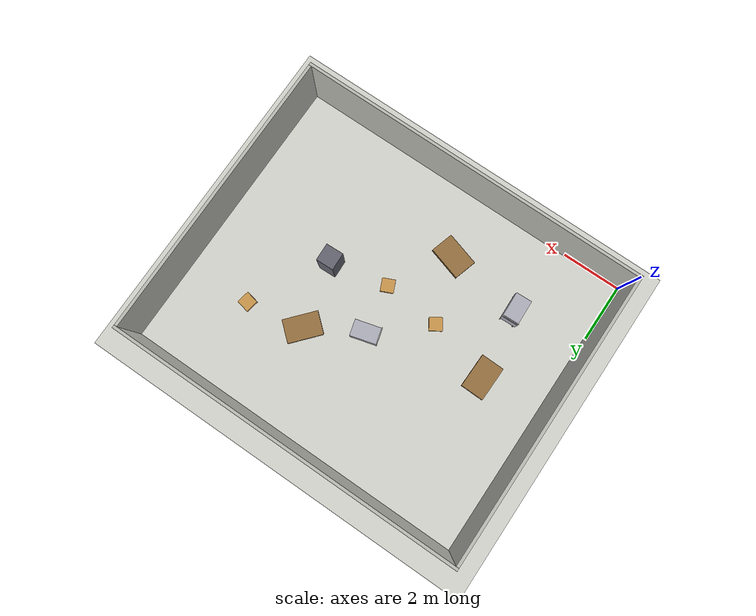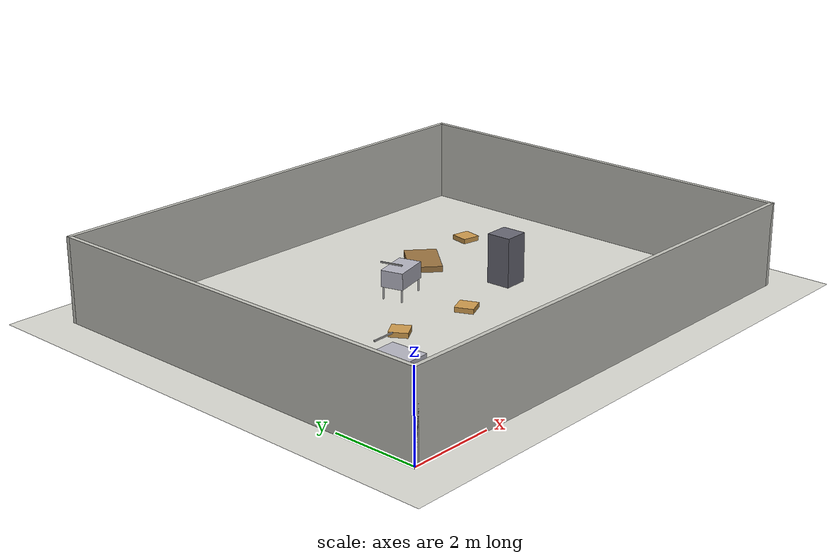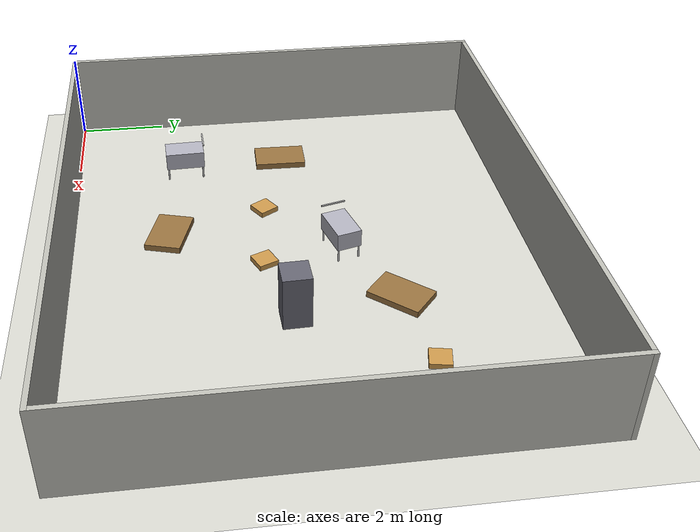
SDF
<?xml version="1.0"?>
<!-- GENERATED by cc_gazebo/scripts/generate_worlds.py from sim/ccsim/world.py (seed 1000). Do not edit. -->
<sdf version="1.9">
  <world name="cluttered_room">
    <physics name="1ms" type="ignore">
      <max_step_size>0.001</max_step_size>
      <real_time_factor>1.0</real_time_factor>
    </physics>
    <plugin filename="gz-sim-physics-system" name="gz::sim::systems::Physics"/>
    <plugin filename="gz-sim-user-commands-system" name="gz::sim::systems::UserCommands"/>
    <plugin filename="gz-sim-scene-broadcaster-system" name="gz::sim::systems::SceneBroadcaster"/>
    <plugin filename="gz-sim-sensors-system" name="gz::sim::systems::Sensors">
      <render_engine>ogre2</render_engine>
    </plugin>
    <plugin filename="gz-sim-imu-system" name="gz::sim::systems::Imu"/>
    <plugin filename="gz-sim-contact-system" name="gz::sim::systems::Contact"/>
    <scene><ambient>0.6 0.6 0.6 1</ambient><background>0.8 0.85 0.9 1</background><shadows>false</shadows></scene>
    <gui fullscreen="0">
      <plugin filename="MinimalScene" name="3D View">
        <gz-gui><title>3D View</title><property type="bool" key="showTitleBar">false</property>
          <property type="string" key="state">docked</property></gz-gui>
        <engine>ogre2</engine>
        <scene>scene</scene>
        <ambient_light>0.4 0.4 0.4</ambient_light>
        <background_color>0.8 0.85 0.9</background_color>
        <camera_pose>-1.73 -1.19 3.0 0 0.6 0.675</camera_pose>
        <camera_clip><near>0.1</near><far>500</far></camera_clip>
      </plugin>
      <plugin filename="GzSceneManager" name="Scene Manager"><gz-gui><property key="resizable" type="bool">false</property><property key="width" type="double">5</property><property key="height" type="double">5</property><property key="state" type="string">floating</property><property key="showTitleBar" type="bool">false</property></gz-gui></plugin>
      <plugin filename="InteractiveViewControl" name="Interactive view control"><gz-gui><property key="resizable" type="bool">false</property><property key="width" type="double">5</property><property key="height" type="double">5</property><property key="state" type="string">floating</property><property key="showTitleBar" type="bool">false</property></gz-gui></plugin>
      <plugin filename="CameraTracking" name="Camera Tracking"><gz-gui><property key="resizable" type="bool">false</property><property key="width" type="double">5</property><property key="height" type="double">5</property><property key="state" type="string">floating</property><property key="showTitleBar" type="bool">false</property></gz-gui></plugin>
      <plugin filename="MarkerManager" name="Marker manager"><gz-gui><property key="resizable" type="bool">false</property><property key="width" type="double">5</property><property key="height" type="double">5</property><property key="state" type="string">floating</property><property key="showTitleBar" type="bool">false</property></gz-gui></plugin>
      <plugin filename="SelectEntities" name="Select Entities"><gz-gui><property key="resizable" type="bool">false</property><property key="width" type="double">5</property><property key="height" type="double">5</property><property key="state" type="string">floating</property><property key="showTitleBar" type="bool">false</property></gz-gui></plugin>
      <plugin filename="Spawn" name="Spawn Entities"><gz-gui><property key="resizable" type="bool">false</property><property key="width" type="double">5</property><property key="height" type="double">5</property><property key="state" type="string">floating</property><property key="showTitleBar" type="bool">false</property></gz-gui></plugin>
      <plugin filename="VisualizationCapabilities" name="Visualization Capabilities"><gz-gui><property key="resizable" type="bool">false</property><property key="width" type="double">5</property><property key="height" type="double">5</property><property key="state" type="string">floating</property><property key="showTitleBar" type="bool">false</property></gz-gui></plugin>
      <plugin filename="WorldControl" name="World control">
        <gz-gui><title>World control</title><property type="bool" key="showTitleBar">false</property>
          <property type="bool" key="resizable">false</property><property type="double" key="height">72</property>
          <property type="double" key="z">1</property><property type="string" key="state">floating</property>
          <anchors target="3D View"><line own="left" target="left"/><line own="bottom" target="bottom"/></anchors></gz-gui>
        <play_pause>true</play_pause><step>true</step><start_paused>false</start_paused><use_event>true</use_event>
      </plugin>
      <plugin filename="WorldStats" name="World stats">
        <gz-gui><title>World stats</title><property type="bool" key="showTitleBar">false</property>
          <property type="bool" key="resizable">false</property><property type="double" key="height">110</property>
          <property type="double" key="width">290</property><property type="double" key="z">1</property>
          <property type="string" key="state">floating</property>
          <anchors target="3D View"><line own="right" target="right"/><line own="bottom" target="bottom"/></anchors></gz-gui>
        <sim_time>true</sim_time><real_time>true</real_time><real_time_factor>true</real_time_factor><iterations>true</iterations>
      </plugin>
      <plugin filename="EntityTree" name="Entity tree"></plugin>
      <plugin filename="ComponentInspector" name="Component inspector"></plugin>
    </gui>
    <light type="directional" name="sun">
      <cast_shadows>false</cast_shadows>
      <pose>0 0 10 0 0 0</pose>
      <diffuse>0.9 0.9 0.9 1</diffuse>
      <direction>-0.4 0.2 -0.9</direction>
    </light>
    <model name="ground_plane">
      <static>true</static>
      <link name="link">
        <collision name="collision">
          <geometry><plane><normal>0 0 1</normal><size>200 200</size></plane></geometry>
          <!-- polished floor -->
          <surface><friction><ode><mu>0.6</mu><mu2>0.6</mu2></ode></friction></surface>
        </collision>
        <visual name="visual">
          <geometry><plane><normal>0 0 1</normal><size>200 200</size></plane></geometry>
          <material><ambient>0.85 0.85 0.82 1</ambient><diffuse>0.85 0.85 0.82 1</diffuse></material>
        </visual>
      </link>
    </model>
    <model name="wall_0">
      <static>true</static>
      <pose>6.0000 0.0000 1.0000 0 0 0.0000</pose>
      <link name="link">
        <collision name="collision"><geometry><box><size>12.1000 0.1000 2.0000</size></box></geometry></collision>
        <visual name="visual">
          <geometry><box><size>12.1000 0.1000 2.0000</size></box></geometry>
          <material><ambient>0.75 0.75 0.72 1</ambient><diffuse>0.75 0.75 0.72 1</diffuse></material>
        </visual>
      </link>
    </model>
    <model name="wall_1">
      <static>true</static>
      <pose>12.0000 5.0000 1.0000 0 0 1.5708</pose>
      <link name="link">
        <collision name="collision"><geometry><box><size>10.1000 0.1000 2.0000</size></box></geometry></collision>
        <visual name="visual">
          <geometry><box><size>10.1000 0.1000 2.0000</size></box></geometry>
          <material><ambient>0.75 0.75 0.72 1</ambient><diffuse>0.75 0.75 0.72 1</diffuse></material>
        </visual>
      </link>
    </model>
    <model name="wall_2">
      <static>true</static>
      <pose>6.0000 10.0000 1.0000 0 0 3.1416</pose>
      <link name="link">
        <collision name="collision"><geometry><box><size>12.1000 0.1000 2.0000</size></box></geometry></collision>
        <visual name="visual">
          <geometry><box><size>12.1000 0.1000 2.0000</size></box></geometry>
          <material><ambient>0.75 0.75 0.72 1</ambient><diffuse>0.75 0.75 0.72 1</diffuse></material>
        </visual>
      </link>
    </model>
    <model name="wall_3">
      <static>true</static>
      <pose>0.0000 5.0000 1.0000 0 0 -1.5708</pose>
      <link name="link">
        <collision name="collision"><geometry><box><size>10.1000 0.1000 2.0000</size></box></geometry></collision>
        <visual name="visual">
          <geometry><box><size>10.1000 0.1000 2.0000</size></box></geometry>
          <material><ambient>0.75 0.75 0.72 1</ambient><diffuse>0.75 0.75 0.72 1</diffuse></material>
        </visual>
      </link>
    </model>
    <model name="pallet_0">
      <static>true</static>
      <pose>5.0108 2.1417 0.0700 0 0 2.8517</pose>
      <link name="link">
        <collision name="collision"><geometry><box><size>1.2000 0.8000 0.1400</size></box></geometry></collision>
        <visual name="visual">
          <geometry><box><size>1.2000 0.8000 0.1400</size></box></geometry>
          <material><ambient>0.6 0.45 0.25 1</ambient><diffuse>0.6 0.45 0.25 1</diffuse></material>
        </visual>
      </link>
    </model>
    <model name="pallet_1">
      <static>true</static>
      <pose>7.7470 6.8275 0.0700 0 0 -2.2891</pose>
      <link name="link">
        <collision name="collision"><geometry><box><size>1.2000 0.8000 0.1400</size></box></geometry></collision>
        <visual name="visual">
          <geometry><box><size>1.2000 0.8000 0.1400</size></box></geometry>
          <material><ambient>0.6 0.45 0.25 1</ambient><diffuse>0.6 0.45 0.25 1</diffuse></material>
        </visual>
      </link>
    </model>
    <model name="pallet_2">
      <static>true</static>
      <pose>2.0799 4.9201 0.0700 0 0 1.5500</pose>
      <link name="link">
        <collision name="collision"><geometry><box><size>1.2000 0.8000 0.1400</size></box></geometry></collision>
        <visual name="visual">
          <geometry><box><size>1.2000 0.8000 0.1400</size></box></geometry>
          <material><ambient>0.6 0.45 0.25 1</ambient><diffuse>0.6 0.45 0.25 1</diffuse></material>
        </visual>
      </link>
    </model>
    <model name="low_box_3">
      <static>true</static>
      <pose>6.2460 4.1528 0.0600 0 0 1.9839</pose>
      <link name="link">
        <collision name="collision"><geometry><box><size>0.4500 0.4500 0.1200</size></box></geometry></collision>
        <visual name="visual">
          <geometry><box><size>0.4500 0.4500 0.1200</size></box></geometry>
          <material><ambient>0.8 0.6 0.3 1</ambient><diffuse>0.8 0.6 0.3 1</diffuse></material>
        </visual>
      </link>
    </model>
    <model name="low_box_4">
      <static>true</static>
      <pose>9.7125 7.1640 0.0600 0 0 2.9499</pose>
      <link name="link">
        <collision name="collision"><geometry><box><size>0.4500 0.4500 0.1200</size></box></geometry></collision>
        <visual name="visual">
          <geometry><box><size>0.4500 0.4500 0.1200</size></box></geometry>
          <material><ambient>0.8 0.6 0.3 1</ambient><diffuse>0.8 0.6 0.3 1</diffuse></material>
        </visual>
      </link>
    </model>
    <model name="low_box_5">
      <static>true</static>
      <pose>4.2547 4.3278 0.0600 0 0 2.1326</pose>
      <link name="link">
        <collision name="collision"><geometry><box><size>0.4500 0.4500 0.1200</size></box></geometry></collision>
        <visual name="visual">
          <geometry><box><size>0.4500 0.4500 0.1200</size></box></geometry>
          <material><ambient>0.8 0.6 0.3 1</ambient><diffuse>0.8 0.6 0.3 1</diffuse></material>
        </visual>
      </link>
    </model>
    <model name="cart_6">
      <static>true</static>
      <pose>2.4063 2.5802 0 0 0 -1.5353</pose>
      <link name="link">
        <collision name="leg0"><pose>0.410 0.235 0.15 0 0 0</pose><geometry><cylinder><radius>0.02</radius><length>0.30</length></cylinder></geometry></collision>
        <visual name="leg0_v"><pose>0.410 0.235 0.15 0 0 0</pose><geometry><cylinder><radius>0.02</radius><length>0.30</length></cylinder></geometry></visual>
        <collision name="leg1"><pose>-0.410 0.235 0.15 0 0 0</pose><geometry><cylinder><radius>0.02</radius><length>0.30</length></cylinder></geometry></collision>
        <visual name="leg1_v"><pose>-0.410 0.235 0.15 0 0 0</pose><geometry><cylinder><radius>0.02</radius><length>0.30</length></cylinder></geometry></visual>
        <collision name="leg2"><pose>-0.410 -0.235 0.15 0 0 0</pose><geometry><cylinder><radius>0.02</radius><length>0.30</length></cylinder></geometry></collision>
        <visual name="leg2_v"><pose>-0.410 -0.235 0.15 0 0 0</pose><geometry><cylinder><radius>0.02</radius><length>0.30</length></cylinder></geometry></visual>
        <collision name="leg3"><pose>0.410 -0.235 0.15 0 0 0</pose><geometry><cylinder><radius>0.02</radius><length>0.30</length></cylinder></geometry></collision>
        <visual name="leg3_v"><pose>0.410 -0.235 0.15 0 0 0</pose><geometry><cylinder><radius>0.02</radius><length>0.30</length></cylinder></geometry></visual>
        <collision name="body"><pose>0 0 0.5 0 0 0</pose><geometry><box><size>0.900 0.550 0.4</size></box></geometry></collision>
        <visual name="body_v"><pose>0 0 0.5 0 0 0</pose><geometry><box><size>0.900 0.550 0.4</size></box></geometry>
          <material><ambient>0.7 0.7 0.75 1</ambient><diffuse>0.7 0.7 0.75 1</diffuse></material></visual>
        <collision name="handle"><pose>-0.450 0 0.9 0 0 0</pose><geometry><box><size>0.03 0.550 0.03</size></box></geometry></collision>
        <visual name="handle_v"><pose>-0.450 0 0.9 0 0 0</pose><geometry><box><size>0.03 0.550 0.03</size></box></geometry></visual>
      </link>
    </model>
    <model name="cart_7">
      <static>true</static>
      <pose>5.9355 5.8565 0 0 0 0.2633</pose>
      <link name="link">
        <collision name="leg0"><pose>0.410 0.235 0.15 0 0 0</pose><geometry><cylinder><radius>0.02</radius><length>0.30</length></cylinder></geometry></collision>
        <visual name="leg0_v"><pose>0.410 0.235 0.15 0 0 0</pose><geometry><cylinder><radius>0.02</radius><length>0.30</length></cylinder></geometry></visual>
        <collision name="leg1"><pose>-0.410 0.235 0.15 0 0 0</pose><geometry><cylinder><radius>0.02</radius><length>0.30</length></cylinder></geometry></collision>
        <visual name="leg1_v"><pose>-0.410 0.235 0.15 0 0 0</pose><geometry><cylinder><radius>0.02</radius><length>0.30</length></cylinder></geometry></visual>
        <collision name="leg2"><pose>-0.410 -0.235 0.15 0 0 0</pose><geometry><cylinder><radius>0.02</radius><length>0.30</length></cylinder></geometry></collision>
        <visual name="leg2_v"><pose>-0.410 -0.235 0.15 0 0 0</pose><geometry><cylinder><radius>0.02</radius><length>0.30</length></cylinder></geometry></visual>
        <collision name="leg3"><pose>0.410 -0.235 0.15 0 0 0</pose><geometry><cylinder><radius>0.02</radius><length>0.30</length></cylinder></geometry></collision>
        <visual name="leg3_v"><pose>0.410 -0.235 0.15 0 0 0</pose><geometry><cylinder><radius>0.02</radius><length>0.30</length></cylinder></geometry></visual>
        <collision name="body"><pose>0 0 0.5 0 0 0</pose><geometry><box><size>0.900 0.550 0.4</size></box></geometry></collision>
        <visual name="body_v"><pose>0 0 0.5 0 0 0</pose><geometry><box><size>0.900 0.550 0.4</size></box></geometry>
          <material><ambient>0.7 0.7 0.75 1</ambient><diffuse>0.7 0.7 0.75 1</diffuse></material></visual>
        <collision name="handle"><pose>-0.450 0 0.9 0 0 0</pose><geometry><box><size>0.03 0.550 0.03</size></box></geometry></collision>
        <visual name="handle_v"><pose>-0.450 0 0.9 0 0 0</pose><geometry><box><size>0.03 0.550 0.03</size></box></geometry></visual>
      </link>
    </model>
    <model name="shelf_8">
      <static>true</static>
      <pose>8.1489 4.5964 0.6000 0 0 -3.1075</pose>
      <link name="link">
        <collision name="collision"><geometry><box><size>0.6000 0.6000 1.2000</size></box></geometry></collision>
        <visual name="visual">
          <geometry><box><size>0.6000 0.6000 1.2000</size></box></geometry>
          <material><ambient>0.4 0.4 0.45 1</ambient><diffuse>0.4 0.4 0.45 1</diffuse></material>
        </visual>
      </link>
    </model>
  </world>
</sdf>
